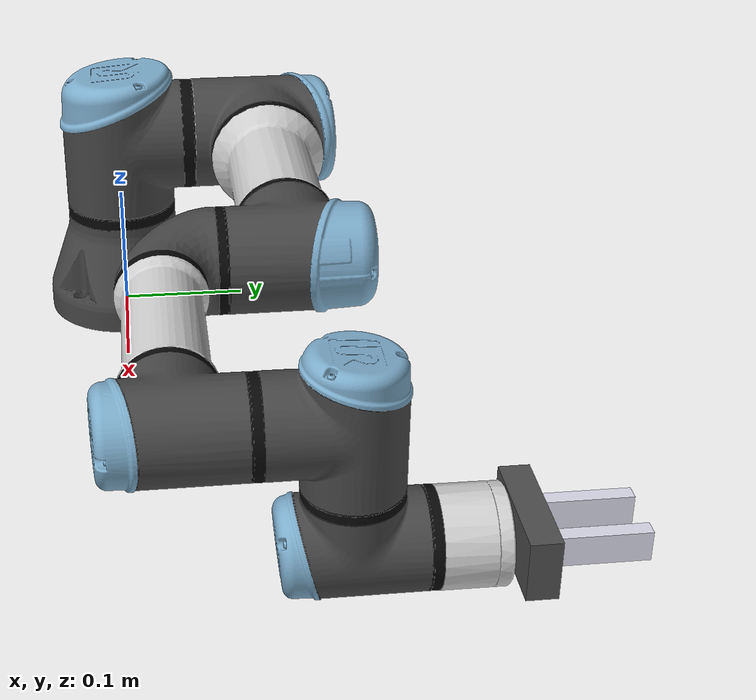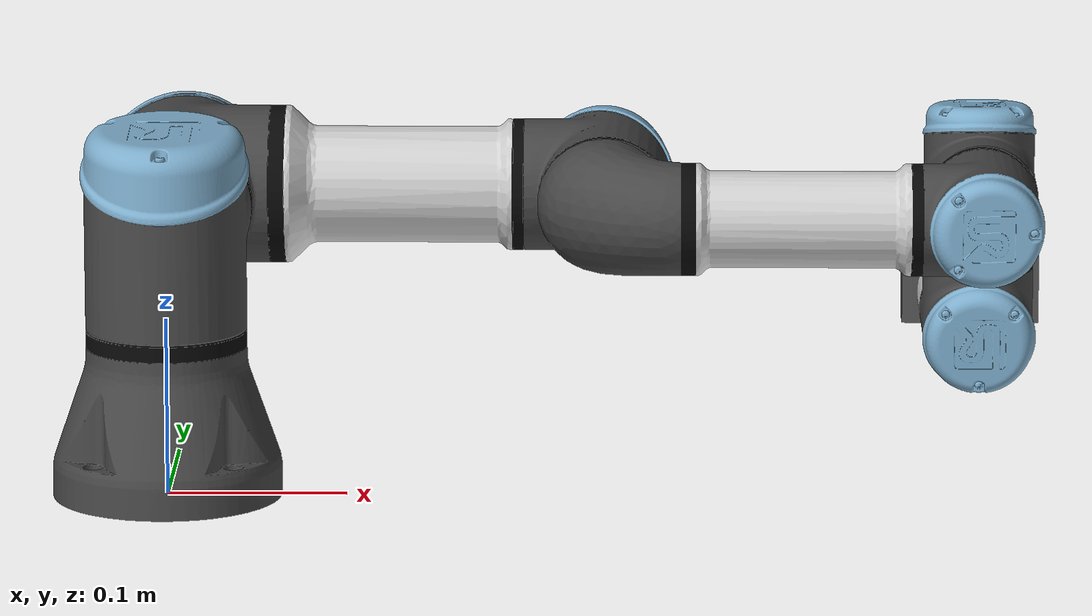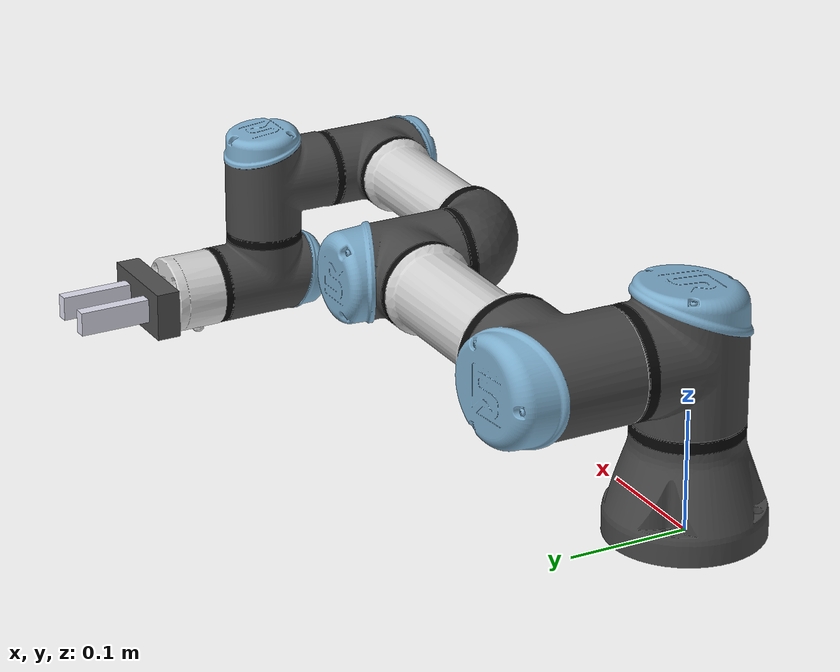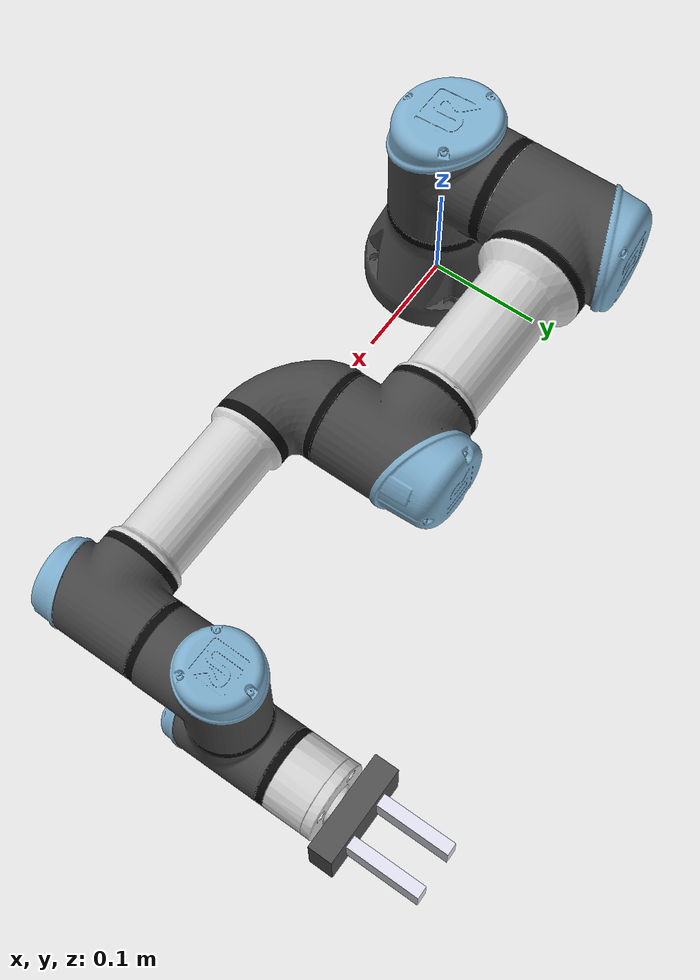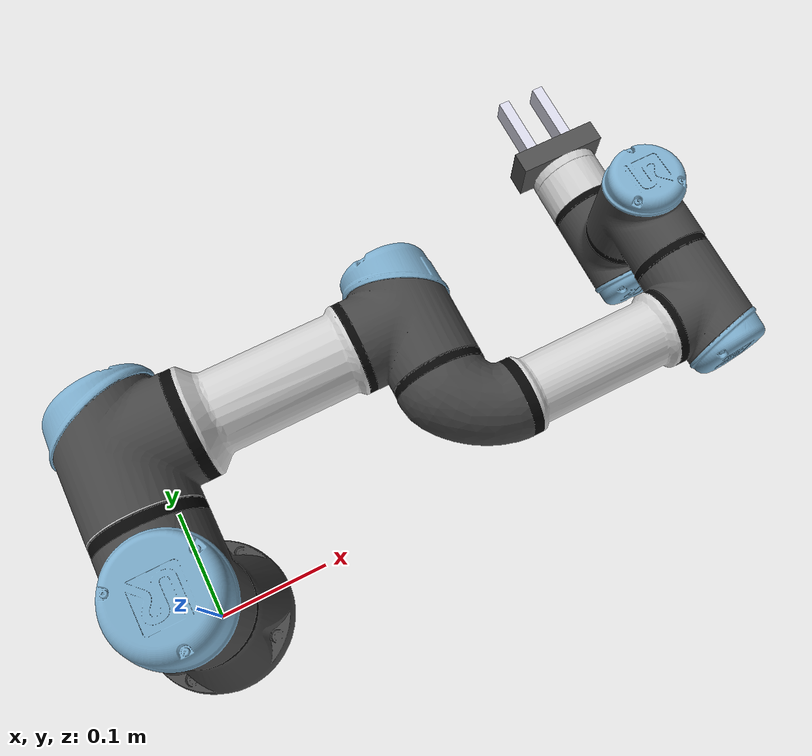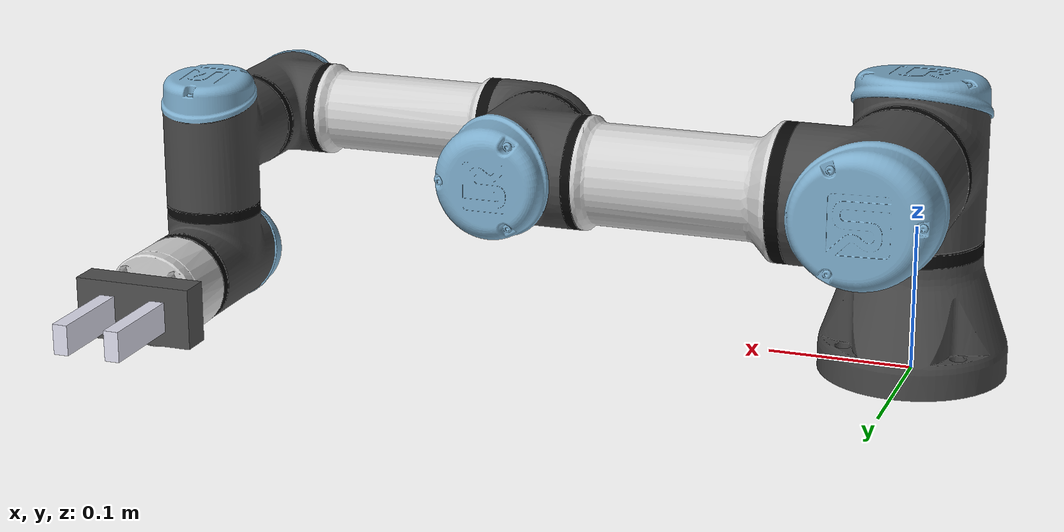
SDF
<sdf version='1.9'>
  <model name='ur'>
    <joint name='base_joint' type='fixed'>
      <pose relative_to='__model__'>0 0 0 0 0 0</pose>
      <parent>world</parent>
      <child>base_link</child>
    </joint>
    <link name='base_link'>
      <pose relative_to='base_joint'>0 0 0 0 0 0</pose>
      <inertial>
        <pose>0 0 0 0 0 0</pose>
        <mass>2</mass>
        <inertia>
          <ixx>0.0030531654453999999</ixx>
          <ixy>0</ixy>
          <ixz>0</ixz>
          <iyy>0.0030531654453999999</iyy>
          <iyz>0</iyz>
          <izz>0.0056249999999999998</izz>
        </inertia>
      </inertial>
      <collision name='base_link_inertia_collision'>
        <pose>0 0 0 0 0 -2.449293598294706e-16</pose>
        <geometry>
          <mesh>
            <scale>1 1 1</scale>
            <uri>file:///opt/ros/humble/share/ur_description/meshes/ur3e/collision/base.stl</uri>
          </mesh>
        </geometry>
      </collision>
      <visual name='base_link_inertia_visual'>
        <pose>0 0 0 0 0 -2.449293598294706e-16</pose>
        <geometry>
          <mesh>
            <scale>1 1 1</scale>
            <uri>file:///opt/ros/humble/share/ur_description/meshes/ur3e/visual/base.dae</uri>
          </mesh>
        </geometry>
      </visual>
    </link>
    <joint name='shoulder_pan_joint' type='revolute'>
      <pose relative_to='base_link'>0 0 0.15185 0 0 3.141592653589793</pose>
      <parent>base_link</parent>
      <child>shoulder_link</child>
      <axis>
        <xyz>0 0 1</xyz>
        <limit>
          <lower>-6.2831853071795862</lower>
          <upper>6.2831853071795862</upper>
          <effort>54</effort>
          <velocity>3.1415926535897931</velocity>
        </limit>
        <dynamics>
          <damping>0</damping>
          <friction>0</friction>
          <spring_reference>0</spring_reference>
          <spring_stiffness>0</spring_stiffness>
        </dynamics>
      </axis>
    </joint>
    <link name='shoulder_link'>
      <pose relative_to='shoulder_pan_joint'>0 0 0 0 0 0</pose>
      <inertial>
        <pose>0 0 -0.02 1.570796326794897 0 0</pose>
        <mass>1.98</mass>
        <inertia>
          <ixx>0.0027656999999999998</ixx>
          <ixy>9.5999999999999996e-06</ixy>
          <ixz>-1.49e-05</ixz>
          <iyy>0.0021500999999999998</iyy>
          <iyz>0.0001873</iyz>
          <izz>0.0025625999999999999</izz>
        </inertia>
      </inertial>
      <collision name='shoulder_link_collision'>
        <pose>0 0 0 0 0 3.141592653589793</pose>
        <geometry>
          <mesh>
            <scale>1 1 1</scale>
            <uri>file:///opt/ros/humble/share/ur_description/meshes/ur3e/collision/shoulder.stl</uri>
          </mesh>
        </geometry>
      </collision>
      <visual name='shoulder_link_visual'>
        <pose>0 0 0 0 0 3.141592653589793</pose>
        <geometry>
          <mesh>
            <scale>1 1 1</scale>
            <uri>file:///opt/ros/humble/share/ur_description/meshes/ur3e/visual/shoulder.dae</uri>
          </mesh>
        </geometry>
      </visual>
    </link>
    <joint name='shoulder_lift_joint' type='revolute'>
      <pose relative_to='shoulder_link'>0 0 0 1.570796327 0 0</pose>
      <parent>shoulder_link</parent>
      <child>upper_arm_link</child>
      <axis>
        <xyz>0 0 1</xyz>
        <limit>
          <lower>-6.2831853071795862</lower>
          <upper>6.2831853071795862</upper>
          <effort>54</effort>
          <velocity>3.1415926535897931</velocity>
        </limit>
        <dynamics>
          <damping>0</damping>
          <friction>0</friction>
          <spring_reference>0</spring_reference>
          <spring_stiffness>0</spring_stiffness>
        </dynamics>
      </axis>
    </joint>
    <link name='upper_arm_link'>
      <pose relative_to='shoulder_lift_joint'>0 0 0 0 0 0</pose>
      <inertial>
        <pose>-0.11355 0 0.1157 0 0 0</pose>
        <mass>3.4445000000000001</mass>
        <inertia>
          <ixx>0.0042623000000000001</ixx>
          <ixy>-4.0899999999999998e-05</ixy>
          <ixz>-0.0014959999999999999</ixz>
          <iyy>0.046028399999999997</iyy>
          <iyz>-1.29e-05</iyz>
          <izz>0.044894700000000003</izz>
        </inertia>
      </inertial>
      <collision name='upper_arm_link_collision'>
        <pose>0 0 0.12 1.570796326794896 0 -1.570796326794896</pose>
        <geometry>
          <mesh>
            <scale>1 1 1</scale>
            <uri>file:///opt/ros/humble/share/ur_description/meshes/ur3e/collision/upperarm.stl</uri>
          </mesh>
        </geometry>
      </collision>
      <visual name='upper_arm_link_visual'>
        <pose>0 0 0.12 1.570796326794896 0 -1.570796326794896</pose>
        <geometry>
          <mesh>
            <scale>1 1 1</scale>
            <uri>file:///opt/ros/humble/share/ur_description/meshes/ur3e/visual/upperarm.dae</uri>
          </mesh>
        </geometry>
      </visual>
    </link>
    <joint name='elbow_joint' type='revolute'>
      <pose relative_to='upper_arm_link'>-0.24355 0 0 0 0 0</pose>
      <parent>upper_arm_link</parent>
      <child>forearm_link</child>
      <axis>
        <xyz>0 0 1</xyz>
        <limit>
          <lower>-3.1415926535897931</lower>
          <upper>3.1415926535897931</upper>
          <effort>28</effort>
          <velocity>3.1415926535897931</velocity>
        </limit>
        <dynamics>
          <damping>0</damping>
          <friction>0</friction>
          <spring_reference>0</spring_reference>
          <spring_stiffness>0</spring_stiffness>
        </dynamics>
      </axis>
    </joint>
    <link name='forearm_link'>
      <pose relative_to='elbow_joint'>0 0 0 0 0 0</pose>
      <inertial>
        <pose>-0.1632 0 0.0238 0 0 0</pose>
        <mass>1.4370000000000001</mass>
        <inertia>
          <ixx>0.0010510999999999999</ixx>
          <ixy>0</ixy>
          <ixz>-3.3099999999999998e-05</ixz>
          <iyy>0.0113396</iyy>
          <iyz>2.2000000000000001e-06</iyz>
          <izz>0.0110895</izz>
        </inertia>
      </inertial>
      <collision name='forearm_link_collision'>
        <pose>0 0 0.027 1.570796326794896 0 -1.570796326794896</pose>
        <geometry>
          <mesh>
            <scale>1 1 1</scale>
            <uri>file:///opt/ros/humble/share/ur_description/meshes/ur3e/collision/forearm.stl</uri>
          </mesh>
        </geometry>
      </collision>
      <visual name='forearm_link_visual'>
        <pose>0 0 0.027 1.570796326794896 0 -1.570796326794896</pose>
        <geometry>
          <mesh>
            <scale>1 1 1</scale>
            <uri>file:///opt/ros/humble/share/ur_description/meshes/ur3e/visual/forearm.dae</uri>
          </mesh>
        </geometry>
      </visual>
    </link>
    <joint name='wrist_1_joint' type='revolute'>
      <pose relative_to='forearm_link'>-0.2132 0 0.13105 0 0 0</pose>
      <parent>forearm_link</parent>
      <child>wrist_1_link</child>
      <axis>
        <xyz>0 0 1</xyz>
        <limit>
          <lower>-6.2831853071795862</lower>
          <upper>6.2831853071795862</upper>
          <effort>9</effort>
          <velocity>6.2831853071795862</velocity>
        </limit>
        <dynamics>
          <damping>0</damping>
          <friction>0</friction>
          <spring_reference>0</spring_reference>
          <spring_stiffness>0</spring_stiffness>
        </dynamics>
      </axis>
    </joint>
    <link name='wrist_1_link'>
      <pose relative_to='wrist_1_joint'>0 0 0 0 0 0</pose>
      <inertial>
        <pose>0 -0.01 0 1.570796326794897 0 0</pose>
        <mass>0.871</mass>
        <inertia>
          <ixx>0.00081740000000000003</ixx>
          <ixy>-4.9999999999999998e-07</ixy>
          <ixz>2.0999999999999998e-06</ixz>
          <iyy>0.00068440000000000005</iyy>
          <iyz>6.1699999999999995e-05</iyz>
          <izz>0.00054969999999999997</izz>
        </inertia>
      </inertial>
      <collision name='wrist_1_link_collision'>
        <pose>0 0 -0.104 1.570796326794896 0 0</pose>
        <geometry>
          <mesh>
            <scale>1 1 1</scale>
            <uri>file:///opt/ros/humble/share/ur_description/meshes/ur3e/collision/wrist1.stl</uri>
          </mesh>
        </geometry>
      </collision>
      <visual name='wrist_1_link_visual'>
        <pose>0 0 -0.104 1.570796326794896 0 0</pose>
        <geometry>
          <mesh>
            <scale>1 1 1</scale>
            <uri>file:///opt/ros/humble/share/ur_description/meshes/ur3e/visual/wrist1.dae</uri>
          </mesh>
        </geometry>
      </visual>
    </link>
    <joint name='wrist_2_joint' type='revolute'>
      <pose relative_to='wrist_1_link'>0 -0.08535 -1.750557762378351e-11 1.570796327 0 0</pose>
      <parent>wrist_1_link</parent>
      <child>wrist_2_link</child>
      <axis>
        <xyz>0 0 1</xyz>
        <limit>
          <lower>-6.2831853071795862</lower>
          <upper>6.2831853071795862</upper>
          <effort>9</effort>
          <velocity>6.2831853071795862</velocity>
        </limit>
        <dynamics>
          <damping>0</damping>
          <friction>0</friction>
          <spring_reference>0</spring_reference>
          <spring_stiffness>0</spring_stiffness>
        </dynamics>
      </axis>
    </joint>
    <link name='wrist_2_link'>
      <pose relative_to='wrist_2_joint'>0 0 0 0 0 0</pose>
      <inertial>
        <pose>0 0.01 0 -1.570796326794897 0 0</pose>
        <mass>0.80500000000000005</mass>
        <inertia>
          <ixx>0.00060590000000000004</ixx>
          <ixy>-5.9999999999999997e-07</ixy>
          <ixz>-5.9999999999999997e-07</ixz>
          <iyy>0.00058370000000000004</iyy>
          <iyz>-2.7100000000000001e-05</iyz>
          <izz>0.00038309999999999999</izz>
        </inertia>
      </inertial>
      <collision name='wrist_2_link_collision'>
        <pose>0 0 -0.08535 0 0 0</pose>
        <geometry>
          <mesh>
            <scale>1 1 1</scale>
            <uri>file:///opt/ros/humble/share/ur_description/meshes/ur3e/collision/wrist2.stl</uri>
          </mesh>
        </geometry>
      </collision>
      <visual name='wrist_2_link_visual'>
        <pose>0 0 -0.08535 0 0 0</pose>
        <geometry>
          <mesh>
            <scale>1 1 1</scale>
            <uri>file:///opt/ros/humble/share/ur_description/meshes/ur3e/visual/wrist2.dae</uri>
          </mesh>
        </geometry>
      </visual>
    </link>
    <joint name='wrist_3_joint' type='revolute'>
      <pose relative_to='wrist_2_link'>0 0.0921 -1.8890025766262e-11 -1.570796327 1.224646799147353e-16 -1.224646799147353e-16</pose>
      <parent>wrist_2_link</parent>
      <child>wrist_3_link</child>
      <axis>
        <xyz>0 0 1</xyz>
        <limit>
          <effort>9</effort>
          <velocity>6.2831853071795862</velocity>
          <lower>-10000000000000000</lower>
          <upper>10000000000000000</upper>
        </limit>
        <dynamics>
          <damping>0</damping>
          <friction>0</friction>
          <spring_reference>0</spring_reference>
          <spring_stiffness>0</spring_stiffness>
        </dynamics>
      </axis>
    </joint>
    <link name='wrist_3_link'>
      <pose relative_to='wrist_3_joint'>0 0 0 0 0 0</pose>
      <inertial>
        <pose>-1.550786194611673e-18 1.215572654699076e-18 -0.007226277372262775 0 0 0</pose>
        <mass>0.41099999999999998</mass>
        <inertia>
          <ixx>0.00024968795620437958</ixx>
          <ixy>-1.00000000000017e-07</ixy>
          <ixz>-1.000000000000071e-07</ixz>
          <iyy>0.00031028795620437958</iyy>
          <iyz>-2.0000000000000769e-07</iyz>
          <izz>0.00023709999999999999</izz>
        </inertia>
      </inertial>
      <collision name='wrist_3_link_collision'>
        <pose>0 0 -0.0921 1.570796326794896 0 0</pose>
        <geometry>
          <mesh>
            <scale>1 1 1</scale>
            <uri>file:///opt/ros/humble/share/ur_description/meshes/ur3e/collision/wrist3.stl</uri>
          </mesh>
        </geometry>
      </collision>
      <collision name='wrist_3_link_fixed_joint_lump__gripper_base_collision_1'>
        <pose>-3.469446951953614e-18 0 0.015 -2.465190328815662e-32 -2.220446049250313e-16 2.220446049250313e-16</pose>
        <geometry>
          <box>
            <size>0.08 0.04 0.02</size>
          </box>
        </geometry>
      </collision>
      <visual name='wrist_3_link_visual'>
        <pose>0 0 -0.0921 1.570796326794896 0 0</pose>
        <geometry>
          <mesh>
            <scale>1 1 1</scale>
            <uri>file:///opt/ros/humble/share/ur_description/meshes/ur3e/visual/wrist3.dae</uri>
          </mesh>
        </geometry>
      </visual>
      <visual name='wrist_3_link_fixed_joint_lump__gripper_base_visual_1'>
        <pose>-3.469446951953614e-18 0 0.015 -2.465190328815662e-32 -2.220446049250313e-16 2.220446049250313e-16</pose>
        <geometry>
          <box>
            <size>0.08 0.04 0.02</size>
          </box>
        </geometry>
        <material>
          <diffuse>0.3125 0.3125 0.3125 1</diffuse>
          <ambient>0.3125 0.3125 0.3125 1</ambient>
        </material>
      </visual>
    </link>
    <joint name='left_finger_joint' type='prismatic'>
      <pose relative_to='wrist_3_link'>0.018 4.336808689942018e-18 0.025 -2.465190328815662e-32 -2.220446049250313e-16 2.220446049250313e-16</pose>
      <parent>wrist_3_link</parent>
      <child>left_finger</child>
      <axis>
        <xyz>1 0 0</xyz>
        <limit>
          <lower>0</lower>
          <upper>0.02</upper>
          <effort>20</effort>
          <velocity>0.02</velocity>
        </limit>
        <dynamics>
          <damping>1</damping>
          <friction>0</friction>
          <spring_reference>0</spring_reference>
          <spring_stiffness>0</spring_stiffness>
        </dynamics>
      </axis>
    </joint>
    <link name='left_finger'>
      <pose relative_to='left_finger_joint'>0 0 0 0 0 0</pose>
      <inertial>
        <pose>0 0 0.03 0 0 0</pose>
        <mass>0.040000000000000001</mass>
        <inertia>
          <ixx>1.333333333333333e-05</ixx>
          <ixy>0</ixy>
          <ixz>0</ixz>
          <iyy>1.2333333333333329e-05</iyy>
          <iyz>0</iyz>
          <izz>1.6666666666666671e-06</izz>
        </inertia>
      </inertial>
      <collision name='left_finger_collision'>
        <pose>0 0 0.03 0 0 0</pose>
        <geometry>
          <box>
            <size>0.01 0.02 0.06</size>
          </box>
        </geometry>
      </collision>
      <visual name='left_finger_visual'>
        <pose>0 0 0.03 0 0 0</pose>
        <geometry>
          <box>
            <size>0.01 0.02 0.06</size>
          </box>
        </geometry>
        <material>
          <diffuse>0.875 0.875 0.9375 1</diffuse>
          <ambient>0.875 0.875 0.9375 1</ambient>
        </material>
      </visual>
    </link>
    <joint name='right_finger_joint' type='prismatic'>
      <pose relative_to='wrist_3_link'>-0.018 6.938893903907228e-18 0.02499999999999999 -2.465190328815662e-32 -2.220446049250313e-16 2.220446049250313e-16</pose>
      <parent>wrist_3_link</parent>
      <child>right_finger</child>
      <axis>
        <xyz>-1 0 0</xyz>
        <limit>
          <lower>0</lower>
          <upper>0.02</upper>
          <effort>20</effort>
          <velocity>0.02</velocity>
        </limit>
        <dynamics>
          <damping>1</damping>
          <friction>0</friction>
          <spring_reference>0</spring_reference>
          <spring_stiffness>0</spring_stiffness>
        </dynamics>
      </axis>
    </joint>
    <link name='right_finger'>
      <pose relative_to='right_finger_joint'>0 0 0 0 0 0</pose>
      <inertial>
        <pose>0 0 0.03 0 0 0</pose>
        <mass>0.040000000000000001</mass>
        <inertia>
          <ixx>1.333333333333333e-05</ixx>
          <ixy>0</ixy>
          <ixz>0</ixz>
          <iyy>1.2333333333333329e-05</iyy>
          <iyz>0</iyz>
          <izz>1.6666666666666671e-06</izz>
        </inertia>
      </inertial>
      <collision name='right_finger_collision'>
        <pose>0 0 0.03 0 0 0</pose>
        <geometry>
          <box>
            <size>0.01 0.02 0.06</size>
          </box>
        </geometry>
      </collision>
      <visual name='right_finger_visual'>
        <pose>0 0 0.03 0 0 0</pose>
        <geometry>
          <box>
            <size>0.01 0.02 0.06</size>
          </box>
        </geometry>
        <material>
          <diffuse>0.875 0.875 0.9375 1</diffuse>
          <ambient>0.875 0.875 0.9375 1</ambient>
        </material>
      </visual>
    </link>
    <plugin name='ign_ros2_control::IgnitionROS2ControlPlugin' filename='libign_ros2_control-system.so'>
      <parameters>/home/hung/workspaces/ur_gz_humble/install/hri_ur3e_description/share/hri_ur3e_description/config/ur_gripper_controllers.yaml</parameters>
      <controller_manager_node_name>controller_manager</controller_manager_node_name>
    </plugin>
    <frame name='base_link-base_fixed_joint' attached_to='base_link'>
      <pose>0 0 0 0 -0 3.14159</pose>
    </frame>
    <frame name='base' attached_to='base_link-base_fixed_joint'/>
    <frame name='base_link-base_link_inertia' attached_to='base_link'>
      <pose>0 0 0 0 -0 3.14159</pose>
    </frame>
    <frame name='base_link_inertia' attached_to='base_link-base_link_inertia'/>
    <frame name='grasp_tcp_joint' attached_to='gripper_base'>
      <pose>0 0 0.065 0 -0 0</pose>
    </frame>
    <frame name='grasp_tcp' attached_to='grasp_tcp_joint'/>
    <frame name='gripper_mount_joint' attached_to='tool0'>
      <pose>0 0 0.005 0 -0 0</pose>
    </frame>
    <frame name='gripper_base' attached_to='gripper_mount_joint'/>
    <frame name='flange-tool0' attached_to='flange'>
      <pose>0 0 0 1.5708 -0 1.5708</pose>
    </frame>
    <frame name='tool0' attached_to='flange-tool0'/>
    <frame name='wrist_3-flange' attached_to='wrist_3_link'>
      <pose>0 0 0 -1.5708 -1.5708 0</pose>
    </frame>
    <frame name='flange' attached_to='wrist_3-flange'/>
    <frame name='wrist_3_link-ft_frame' attached_to='wrist_3_link'>
      <pose>0 0 0 3.14159 -0 0</pose>
    </frame>
    <frame name='ft_frame' attached_to='wrist_3_link-ft_frame'/>
  </model>
</sdf>
